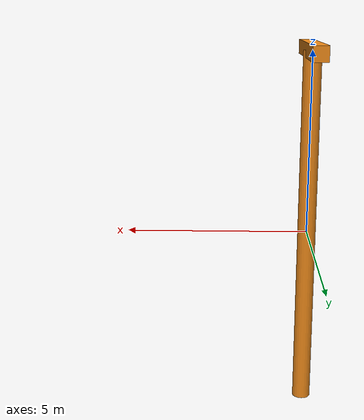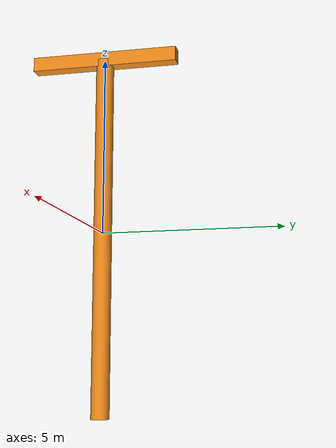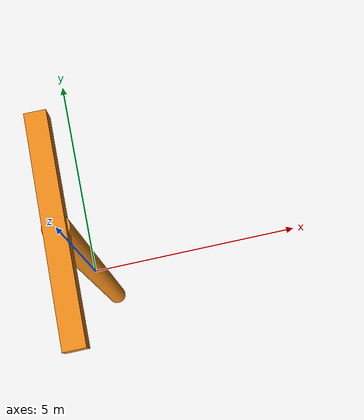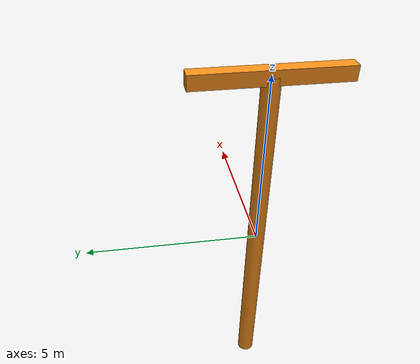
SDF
<sdf version='1.6'>
  <model name='pole_without_cables'>
    <link name='footprint'>
      <pose frame=''>0 0 0 0 -0 0</pose>
      <inertial>
        <pose frame=''>0 0 0.049505 0 -0 0</pose>
        <mass>101</mass>
        <inertia>
          <ixx>860.645</ixx>
          <ixy>0</ixy>
          <ixz>0</ixz>
          <iyy>860.645</iyy>
          <iyz>0</iyz>
          <izz>4.125</izz>
        </inertia>
      </inertial>
      <collision name='footprint_fixed_joint_lump__base_link_collision'>
        <pose frame=''>0 0 0 0 -0 0</pose>
        <geometry>
          <cylinder>
            <length>10</length>
            <radius>0.25</radius>
          </cylinder>
        </geometry>
        <surface>
          <contact>
            <ode/>
          </contact>
          <friction>
            <ode/>
          </friction>
        </surface>
      </collision>
      <collision name='footprint_fixed_joint_lump__top_collision_1'>
        <pose frame=''>0 0 5 0 -0 1.5708</pose>
        <geometry>
          <box>
            <size>4.2 0.4 0.4</size>
          </box>
        </geometry>
        <surface>
          <contact>
            <ode/>
          </contact>
          <friction>
            <ode/>
          </friction>
        </surface>
      </collision>
      <visual name='footprint_fixed_joint_lump__base_link_visual'>
        <pose frame=''>0 0 0 0 -0 0</pose>
        <geometry>
          <cylinder>
            <length>10</length>
            <radius>0.25</radius>
          </cylinder>
        </geometry>
        <material>
          <script>
            <name>Gazebo/Orange</name>
            <uri>file://media/materials/scripts/gazebo.material</uri>
          </script>
        </material>
      </visual>
      <visual name='footprint_fixed_joint_lump__top_visual_1'>
        <pose frame=''>0 0 5 0 -0 1.5708</pose>
        <geometry>
          <box>
            <size>4.2 0.4 0.4</size>
          </box>
        </geometry>
        <material>
          <script>
            <name>Gazebo/Orange</name>
            <uri>file://media/materials/scripts/gazebo.material</uri>
          </script>
        </material>
      </visual>
      <velocity_decay/>
      <gravity>1</gravity>
      <velocity_decay/>
      <self_collide>0</self_collide>
    </link>
    <static>1</static>
  </model>
</sdf>
